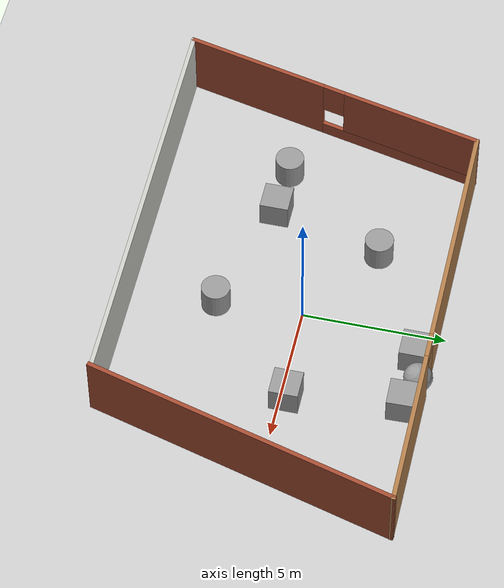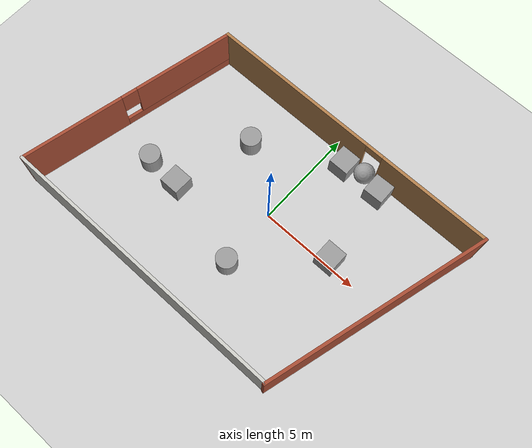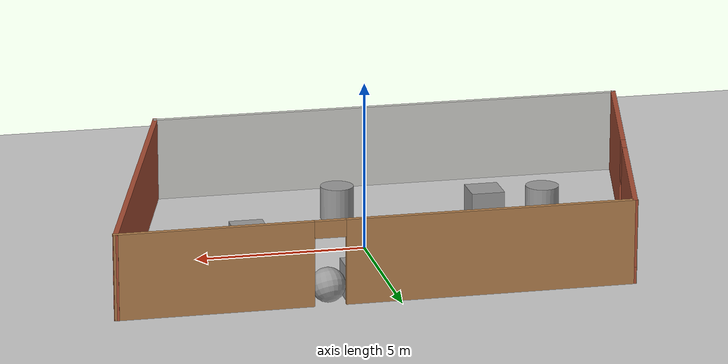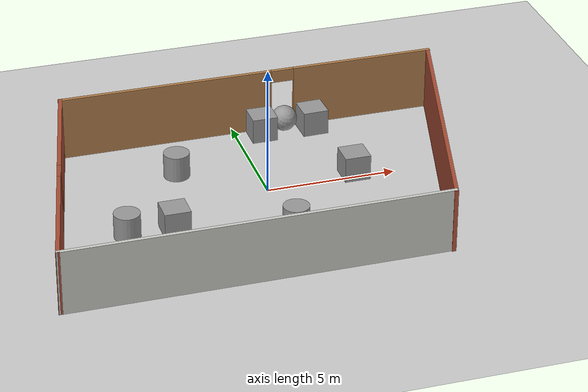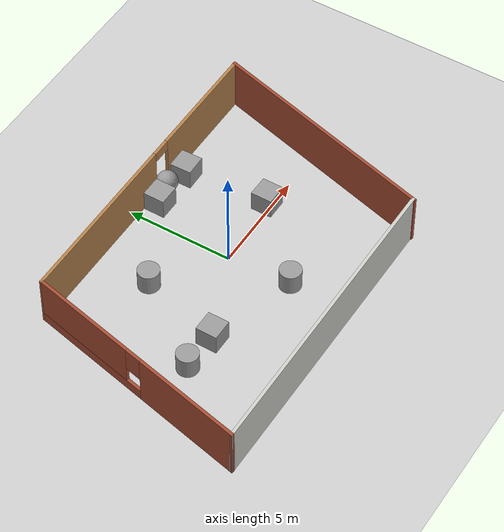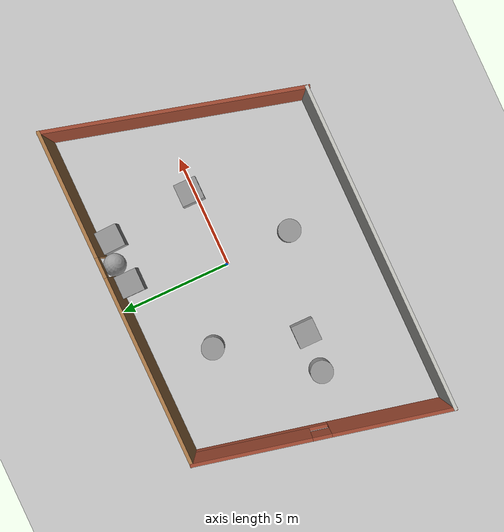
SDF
<sdf version="1.7">
 <world name="default">
  <scene><ambient>0.4 0.4 0.4 1</ambient><background>0.7 0.7 0.7 1</background><shadows>1</shadows></scene>
  <light name="sun" type="directional">
   <pose>0 0 10 0 -0 0</pose>
   <diffuse>0.8 0.8 0.8 1</diffuse>
   <specular>0.2 0.2 0.2 1</specular>
   <attenuation>
    <range>1000</range>
    <constant>0.9</constant>
    <linear>0.01</linear>
    <quadratic>0.001</quadratic>
   </attenuation>
   <direction>-0.5 0.1 -0.9</direction>
   <spot><inner_angle>0</inner_angle><outer_angle>0</outer_angle><falloff>0</falloff></spot>
  </light>
  <model name="ground_plane">
   <static>1</static>
   <link name="link">
    <collision name="collision">
     <geometry><plane><normal>0 0 1</normal><size>100 100</size></plane></geometry>
     <surface><friction><ode><mu>100</mu><mu2>50</mu2></ode></friction></surface>
    </collision>
    <visual name="visual">
     <cast_shadows>0</cast_shadows>
     <geometry><plane><normal>0 0 1</normal><size>100 100</size></plane></geometry>
     <material>
      <script><uri>file://media/materials/scripts/gazebo.material</uri><name>Gazebo/Grey</name></script>
     </material>
    </visual>
   </link>
  </model>
  <physics type="ode">
   <real_time_update_rate>1000</real_time_update_rate>
   <max_step_size>0.001</max_step_size>
   <real_time_factor>1</real_time_factor>
   <ode>
    <solver>
     <type>quick</type>
     <iters>150</iters>
     <precon_iters>0</precon_iters>
     <sor>1.4</sor>
     <use_dynamic_moi_rescaling>1</use_dynamic_moi_rescaling>
    </solver>
    <constraints>
     <cfm>1e-05</cfm>
     <erp>0.2</erp>
     <contact_max_correcting_vel>2000</contact_max_correcting_vel>
     <contact_surface_layer>0.01</contact_surface_layer>
    </constraints>
   </ode>
  </physics>
  <gravity>0 0 -9.8</gravity>
  <magnetic_field>6e-06 2.3e-05 -4.2e-05</magnetic_field>
  <atmosphere type="adiabatic"/>
  <spherical_coordinates>
   <surface_model>EARTH_WGS84</surface_model>
   <latitude_deg>0</latitude_deg>
   <longitude_deg>0</longitude_deg>
   <elevation>0</elevation>
   <heading_deg>0</heading_deg>
  </spherical_coordinates>
  <model name="Untitled">
   <pose>-0.5873 -0.66089 0 0 -0 0</pose>
   <link name="Wall_0">
    <collision name="Wall_0_Collision">
     <geometry><box><size>14.5 0.15 2.5</size></box></geometry>
     <pose>0 0 1.25 0 -0 0</pose>
    </collision>
    <visual name="Wall_0_Visual">
     <pose>0 0 1.25 0 -0 0</pose>
     <geometry><box><size>14.5 0.15 2.5</size></box></geometry>
     <material>
      <script><uri>file://media/materials/scripts/gazebo.material</uri><name>Gazebo/CeilingTiled</name></script>
      <ambient>1 1 1 1</ambient>
     </material>
     <meta><layer>0</layer></meta>
    </visual>
    <pose>-1.43703 -5.3085 0 0 -0 0</pose>
   </link>
   <link name="Wall_2">
    <pose>-7.42615 0.026192 0 0 -0 1.35071</pose>
    <visual name="Wall_2_Visual_0">
     <pose>-2.94668 0 1.25 0 -0 0</pose>
     <geometry><box><size>5.18977 0.15 2.5</size></box></geometry>
     <material>
      <script><uri>file://media/materials/scripts/gazebo.material</uri><name>Gazebo/Bricks</name></script>
      <ambient>1 1 1 1</ambient>
     </material>
     <meta><layer>0</layer></meta>
    </visual>
    <collision name="Wall_2_Collision_0">
     <geometry><box><size>5.18977 0.15 2.5</size></box></geometry>
     <pose>-2.94668 0 1.25 0 -0 0</pose>
    </collision>
    <visual name="Wall_2_Visual_1">
     <pose>2.59488 0 0.25 0 -0 0</pose>
     <geometry><box><size>5.89335 0.15 0.5</size></box></geometry>
     <material>
      <script><uri>file://media/materials/scripts/gazebo.material</uri><name>Gazebo/Bricks</name></script>
      <ambient>1 1 1 1</ambient>
     </material>
     <meta><layer>0</layer></meta>
    </visual>
    <collision name="Wall_2_Collision_1">
     <geometry><box><size>5.89335 0.15 0.5</size></box></geometry>
     <pose>2.59488 0 0.25 0 -0 0</pose>
    </collision>
    <visual name="Wall_2_Visual_2">
     <pose>2.99488 0 1.5 0 -0 0</pose>
     <geometry><box><size>5.09335 0.15 2</size></box></geometry>
     <material>
      <script><uri>file://media/materials/scripts/gazebo.material</uri><name>Gazebo/Bricks</name></script>
      <ambient>1 1 1 1</ambient>
     </material>
     <meta><layer>0</layer></meta>
    </visual>
    <collision name="Wall_2_Collision_2">
     <geometry><box><size>5.09335 0.15 2</size></box></geometry>
     <pose>2.99488 0 1.5 0 -0 0</pose>
    </collision>
    <visual name="Wall_2_Visual_3">
     <pose>0.048208 0 1.9 0 -0 0</pose>
     <geometry><box><size>0.8 0.15 1.2</size></box></geometry>
     <material>
      <script><uri>file://media/materials/scripts/gazebo.material</uri><name>Gazebo/Bricks</name></script>
      <ambient>1 1 1 1</ambient>
     </material>
     <meta><layer>0</layer></meta>
    </visual>
    <collision name="Wall_2_Collision_3">
     <geometry><box><size>0.8 0.15 1.2</size></box></geometry>
     <pose>0.048208 0 1.9 0 -0 0</pose>
    </collision>
   </link>
   <link name="Wall_4">
    <pose>1.1923 5.36089 0 0 -0 0</pose>
    <visual name="Wall_4_Visual_0">
     <pose>-3.27851 0 1.25 0 -0 0</pose>
     <geometry><box><size>8.44299 0.15 2.5</size></box></geometry>
     <material>
      <script><uri>file://media/materials/scripts/gazebo.material</uri><name>Gazebo/Wood</name></script>
      <ambient>1 1 1 1</ambient>
     </material>
     <meta><layer>0</layer></meta>
    </visual>
    <collision name="Wall_4_Collision_0">
     <geometry><box><size>8.44299 0.15 2.5</size></box></geometry>
     <pose>-3.27851 0 1.25 0 -0 0</pose>
    </collision>
    <visual name="Wall_4_Visual_1">
     <pose>4.6715 0 1.25 0 -0 0</pose>
     <geometry><box><size>5.65701 0.15 2.5</size></box></geometry>
     <material>
      <script><uri>file://media/materials/scripts/gazebo.material</uri><name>Gazebo/Wood</name></script>
      <ambient>1 1 1 1</ambient>
     </material>
     <meta><layer>0</layer></meta>
    </visual>
    <collision name="Wall_4_Collision_1">
     <geometry><box><size>5.65701 0.15 2.5</size></box></geometry>
     <pose>4.6715 0 1.25 0 -0 0</pose>
    </collision>
    <visual name="Wall_4_Visual_2">
     <pose>1.39299 0 2.25 0 -0 0</pose>
     <geometry><box><size>0.9 0.15 0.5</size></box></geometry>
     <material>
      <script><uri>file://media/materials/scripts/gazebo.material</uri><name>Gazebo/Wood</name></script>
      <ambient>1 1 1 1</ambient>
     </material>
     <meta><layer>0</layer></meta>
    </visual>
    <collision name="Wall_4_Collision_2">
     <geometry><box><size>0.9 0.15 0.5</size></box></geometry>
     <pose>1.39299 0 2.25 0 -0 0</pose>
    </collision>
   </link>
   <link name="Wall_5">
    <collision name="Wall_5_Collision">
     <geometry><box><size>11.25 0.15 2.5</size></box></geometry>
     <pose>0 0 1.25 0 -0 0</pose>
    </collision>
    <visual name="Wall_5_Visual">
     <pose>0 0 1.25 0 -0 0</pose>
     <geometry><box><size>11.25 0.15 2.5</size></box></geometry>
     <material>
      <script><uri>file://media/materials/scripts/gazebo.material</uri><name>Gazebo/Bricks</name></script>
      <ambient>1 1 1 1</ambient>
     </material>
     <meta><layer>0</layer></meta>
    </visual>
    <pose>7.18085 -0 0 0 -0 -1.8326</pose>
   </link>
   <static>1</static>
  </model>
  <model name="unit_sphere">
   <pose>1.99799 4.40707 0.5 0.574894 0.066927 0.138714</pose>
   <link name="link">
    <inertial>
     <mass>1</mass>
     <inertia><ixx>0.1</ixx><ixy>0</ixy><ixz>0</ixz><iyy>0.1</iyy><iyz>0</iyz><izz>0.1</izz></inertia>
    </inertial>
    <collision name="collision"><geometry><sphere><radius>0.5</radius></sphere></geometry></collision>
    <visual name="visual">
     <geometry><sphere><radius>0.5</radius></sphere></geometry>
     <material>
      <script><name>Gazebo/Grey</name><uri>file://media/materials/scripts/gazebo.material</uri></script>
     </material>
    </visual>
   </link>
  </model>
  <model name="unit_box">
   <pose>3.04466 4.08761 0.5 0 -0 0.024619</pose>
   <link name="link">
    <inertial>
     <mass>1</mass>
     <inertia>
      <ixx>0.166667</ixx>
      <ixy>0</ixy>
      <ixz>0</ixz>
      <iyy>0.166667</iyy>
      <iyz>0</iyz>
      <izz>0.166667</izz>
     </inertia>
    </inertial>
    <collision name="collision"><geometry><box><size>1 1 1</size></box></geometry></collision>
    <visual name="visual">
     <geometry><box><size>1 1 1</size></box></geometry>
     <material>
      <script><name>Gazebo/Grey</name><uri>file://media/materials/scripts/gazebo.material</uri></script>
     </material>
    </visual>
   </link>
  </model>
  <model name="unit_box_0">
   <pose>0.997747 4.12143 0.5 0 0 -0.000847</pose>
   <link name="link">
    <inertial>
     <mass>1</mass>
     <inertia>
      <ixx>0.166667</ixx>
      <ixy>0</ixy>
      <ixz>0</ixz>
      <iyy>0.166667</iyy>
      <iyz>0</iyz>
      <izz>0.166667</izz>
     </inertia>
    </inertial>
    <collision name="collision"><geometry><box><size>1 1 1</size></box></geometry></collision>
    <visual name="visual">
     <geometry><box><size>1 1 1</size></box></geometry>
     <material>
      <script><name>Gazebo/Grey</name><uri>file://media/materials/scripts/gazebo.material</uri></script>
     </material>
    </visual>
   </link>
  </model>
  <model name="unit_box_1">
   <pose>-4.06626 -1.79435 0.5 0 -0 0</pose>
   <link name="link">
    <inertial>
     <mass>1</mass>
     <inertia>
      <ixx>0.166667</ixx>
      <ixy>0</ixy>
      <ixz>0</ixz>
      <iyy>0.166667</iyy>
      <iyz>0</iyz>
      <izz>0.166667</izz>
     </inertia>
    </inertial>
    <collision name="collision"><geometry><box><size>1 1 1</size></box></geometry></collision>
    <visual name="visual">
     <geometry><box><size>1 1 1</size></box></geometry>
     <material>
      <script><name>Gazebo/Grey</name><uri>file://media/materials/scripts/gazebo.material</uri></script>
     </material>
    </visual>
   </link>
  </model>
  <model name="unit_cylinder">
   <pose>-2.98354 2.07036 0.499997 -4e-06 -4e-06 -0</pose>
   <link name="link">
    <inertial>
     <mass>1</mass>
     <inertia><ixx>0.145833</ixx><ixy>0</ixy><ixz>0</ixz><iyy>0.145833</iyy><iyz>0</iyz><izz>0.125</izz></inertia>
    </inertial>
    <collision name="collision">
     <geometry><cylinder><radius>0.5</radius><length>1</length></cylinder></geometry>
    </collision>
    <visual name="visual">
     <geometry><cylinder><radius>0.5</radius><length>1</length></cylinder></geometry>
     <material>
      <script><name>Gazebo/Grey</name><uri>file://media/materials/scripts/gazebo.material</uri></script>
     </material>
    </visual>
   </link>
  </model>
  <model name="unit_box_2">
   <pose>3.47079 0.202662 0.5 0 -0 0</pose>
   <link name="link">
    <inertial>
     <mass>1</mass>
     <inertia>
      <ixx>0.166667</ixx>
      <ixy>0</ixy>
      <ixz>0</ixz>
      <iyy>0.166667</iyy>
      <iyz>0</iyz>
      <izz>0.166667</izz>
     </inertia>
    </inertial>
    <collision name="collision"><geometry><box><size>1 1 1</size></box></geometry></collision>
    <visual name="visual">
     <geometry><box><size>1 1 1</size></box></geometry>
     <material>
      <script><name>Gazebo/Grey</name><uri>file://media/materials/scripts/gazebo.material</uri></script>
     </material>
    </visual>
   </link>
  </model>
  <model name="unit_cylinder_0">
   <pose>0.186598 -2.97729 0.499993 4e-06 4e-06 -0</pose>
   <link name="link">
    <inertial>
     <mass>1</mass>
     <inertia><ixx>0.145833</ixx><ixy>0</ixy><ixz>0</ixz><iyy>0.145833</iyy><iyz>0</iyz><izz>0.125</izz></inertia>
    </inertial>
    <collision name="collision">
     <geometry><cylinder><radius>0.5</radius><length>1</length></cylinder></geometry>
    </collision>
    <visual name="visual">
     <geometry><cylinder><radius>0.5</radius><length>1</length></cylinder></geometry>
     <material>
      <script><name>Gazebo/Grey</name><uri>file://media/materials/scripts/gazebo.material</uri></script>
     </material>
    </visual>
   </link>
  </model>
  <model name="unit_cylinder_1">
   <pose>-5.82402 -1.71433 0.499997 -4e-06 -4e-06 -0</pose>
   <link name="link">
    <inertial>
     <mass>1</mass>
     <inertia><ixx>0.145833</ixx><ixy>0</ixy><ixz>0</ixz><iyy>0.145833</iyy><iyz>0</iyz><izz>0.125</izz></inertia>
    </inertial>
    <collision name="collision">
     <geometry><cylinder><radius>0.5</radius><length>1</length></cylinder></geometry>
    </collision>
    <visual name="visual">
     <geometry><cylinder><radius>0.5</radius><length>1</length></cylinder></geometry>
     <material>
      <script><name>Gazebo/Grey</name><uri>file://media/materials/scripts/gazebo.material</uri></script>
     </material>
    </visual>
   </link>
  </model>
 </world>
</sdf>
